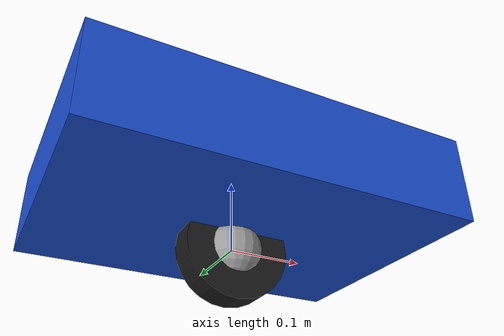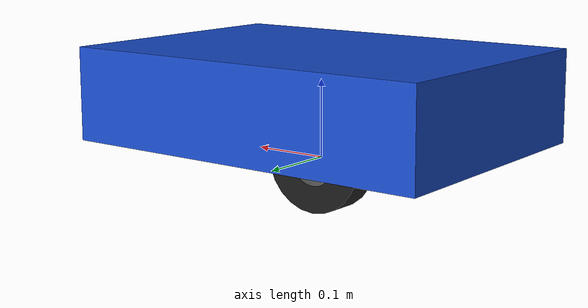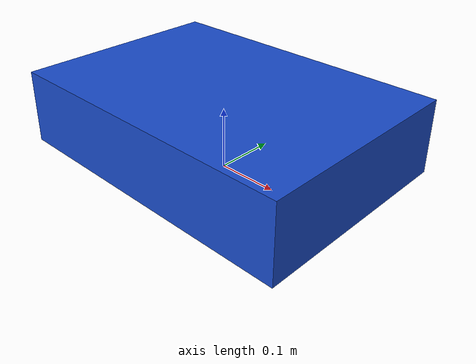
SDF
<?xml version="1.0"?>
<sdf version="1.8">
  <model name="agv">
    <pose>0 0 0 0 0 0</pose>

    <link name="base_footprint"/>

    <link name="base_link">
      <inertial>
        <pose>0 0 0.08 0 0 0</pose>
        <mass>10.0</mass>
        <inertia>
          <ixx>0.15</ixx>
          <ixy>0.0</ixy>
          <ixz>0.0</ixz>
          <iyy>0.28</iyy>
          <iyz>0.0</iyz>
          <izz>0.35</izz>
        </inertia>
      </inertial>

      <collision name="base_collision">
        <pose>0 0 0.08 0 0 0</pose>
        <geometry>
          <box>
            <size>0.5 0.35 0.12</size>
          </box>
        </geometry>
      </collision>

      <visual name="base_visual">
        <pose>0 0 0.08 0 0 0</pose>
        <geometry>
          <box>
            <size>0.5 0.35 0.12</size>
          </box>
        </geometry>
        <material>
          <ambient>0.1 0.3 0.8 1.0</ambient>
          <diffuse>0.1 0.3 0.8 1.0</diffuse>
        </material>
      </visual>
    </link>

    <link name="left_wheel_link">
      <inertial>
        <pose>0 0 0 -1.5708 0 0</pose>
        <mass>1.0</mass>
        <inertia>
          <ixx>0.002</ixx>
          <ixy>0.0</ixy>
          <ixz>0.0</ixz>
          <iyy>0.001</iyy>
          <iyz>0.0</iyz>
          <izz>0.002</izz>
        </inertia>
      </inertial>

      <collision name="left_wheel_collision">
        <pose>0 0 0 -1.5708 0 0</pose>
        <geometry>
          <cylinder>
            <radius>0.07</radius>
            <length>0.04</length>
          </cylinder>
        </geometry>
        <surface>
          <friction>
            <ode>
              <mu>100.0</mu>
              <mu2>100.0</mu2>
            </ode>
          </friction>
        </surface>
      </collision>

      <visual name="left_wheel_visual">
        <pose>0 0 0 -1.5708 0 0</pose>
        <geometry>
          <cylinder>
            <radius>0.07</radius>
            <length>0.04</length>
          </cylinder>
        </geometry>
        <material>
          <ambient>0.1 0.1 0.1 1.0</ambient>
          <diffuse>0.1 0.1 0.1 1.0</diffuse>
        </material>
      </visual>
    </link>

    <link name="right_wheel_link">
      <inertial>
        <pose>0 0 0 -1.5708 0 0</pose>
        <mass>1.0</mass>
        <inertia>
          <ixx>0.002</ixx>
          <ixy>0.0</ixy>
          <ixz>0.0</ixz>
          <iyy>0.001</iyy>
          <iyz>0.0</iyz>
          <izz>0.002</izz>
        </inertia>
      </inertial>

      <collision name="right_wheel_collision">
        <pose>0 0 0 -1.5708 0 0</pose>
        <geometry>
          <cylinder>
            <radius>0.07</radius>
            <length>0.04</length>
          </cylinder>
        </geometry>
        <surface>
          <friction>
            <ode>
              <mu>100.0</mu>
              <mu2>100.0</mu2>
            </ode>
          </friction>
        </surface>
      </collision>

      <visual name="right_wheel_visual">
        <pose>0 0 0 -1.5708 0 0</pose>
        <geometry>
          <cylinder>
            <radius>0.07</radius>
            <length>0.04</length>
          </cylinder>
        </geometry>
        <material>
          <ambient>0.1 0.1 0.1 1.0</ambient>
          <diffuse>0.1 0.1 0.1 1.0</diffuse>
        </material>
      </visual>
    </link>

    <link name="caster_wheel_link">
      <inertial>
        <pose>0 0 0 0 0 0</pose>
        <mass>0.5</mass>
        <inertia>
          <ixx>0.0008</ixx>
          <ixy>0.0</ixy>
          <ixz>0.0</ixz>
          <iyy>0.0008</iyy>
          <iyz>0.0</iyz>
          <izz>0.0008</izz>
        </inertia>
      </inertial>

      <collision name="caster_wheel_collision">
        <pose>0 0 0 0 0 0</pose>
        <geometry>
          <sphere>
            <radius>0.04</radius>
          </sphere>
        </geometry>
        <surface>
          <friction>
            <ode>
              <mu>0.05</mu>
              <mu2>0.05</mu2>
            </ode>
          </friction>
        </surface>
      </collision>

      <visual name="caster_wheel_visual">
        <pose>0 0 0 0 0 0</pose>
        <geometry>
          <sphere>
            <radius>0.04</radius>
          </sphere>
        </geometry>
        <material>
          <ambient>0.6 0.6 0.6 1.0</ambient>
          <diffuse>0.6 0.6 0.6 1.0</diffuse>
        </material>
      </visual>
    </link>

    <joint name="base_joint" type="fixed">
      <parent>base_footprint</parent>
      <child>base_link</child>
      <pose>0 0 0 0 0 0</pose>
    </joint>

    <joint name="left_wheel_joint" type="revolute">
      <parent>base_link</parent>
      <child>left_wheel_link</child>
      <pose>0 0.19 0.07 -1.5708 0 0</pose>
      <axis>
        <xyz>0 0 1</xyz>
        <limit>
          <effort>20</effort>
        </limit>
      </axis>
    </joint>

    <joint name="right_wheel_joint" type="revolute">
      <parent>base_link</parent>
      <child>right_wheel_link</child>
      <pose>0 -0.19 0.07 -1.5708 0 0</pose>
      <axis>
        <xyz>0 0 1</xyz>
        <limit>
          <effort>20</effort>
        </limit>
      </axis>
    </joint>

    <joint name="caster_wheel_joint" type="fixed">
      <parent>base_link</parent>
      <child>caster_wheel_link</child>
      <pose>-0.18 0 0.04 0 0 0</pose>
    </joint>

    <plugin filename="gz-sim-diff-drive-system" name="gz::sim::systems::DiffDrive">
      <left_joint>left_wheel_joint</left_joint>
      <right_joint>right_wheel_joint</right_joint>
      <wheel_separation>0.38</wheel_separation>
      <wheel_radius>0.07</wheel_radius>
      <max_linear_acceleration>1.0</max_linear_acceleration>
      <topic>cmd_vel</topic>
      <odom_topic>odom</odom_topic>
      <frame_id>odom</frame_id>
      <child_frame_id>base_footprint</child_frame_id>
      <odom_publisher_frequency>30</odom_publisher_frequency>
      <tf_topic>tf</tf_topic>
    </plugin>

    <plugin filename="gz-sim-joint-state-publisher-system" name="gz::sim::systems::JointStatePublisher">
      <topic>joint_states</topic>
      <joint_name>left_wheel_joint</joint_name>
      <joint_name>right_wheel_joint</joint_name>
    </plugin>
  </model>
</sdf>
